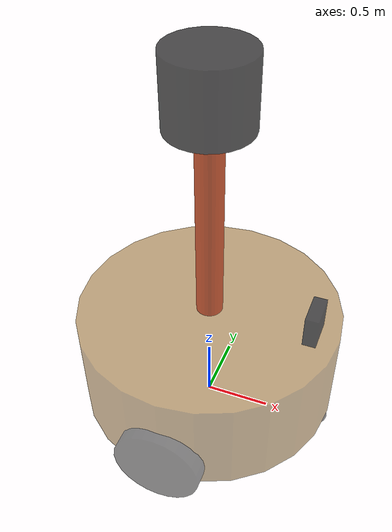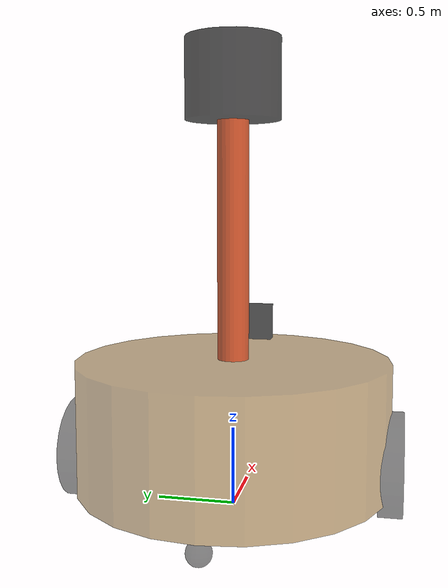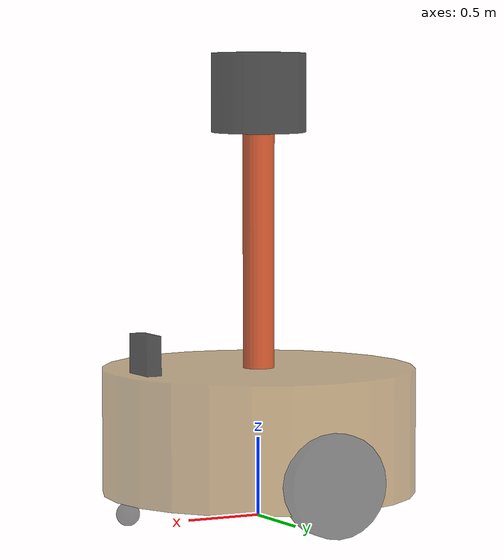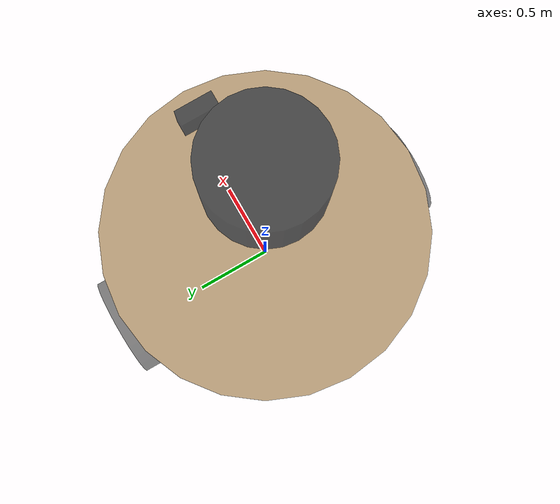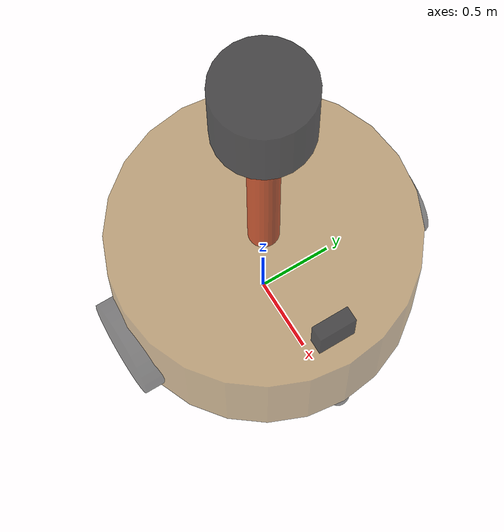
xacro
<robot name="my_base" xmlns:xacro="http://www.ros.org/wiki/xacro">

    <!-- 包含底盘，摄像头与雷达的xacro文件 -->
    <xacro:include filename="demo05_car_base.xacro"/>
    <xacro:include filename="demo06_car_camera.urdf.xacro"/>
    <xacro:include filename="demo07_car_laser.urdf.xacro"/>

</robot>

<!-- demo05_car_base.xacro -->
<robot name="my_base" xmlns:xacro="http://www.ros.org/wiki/xacro">

    <xacro:property name="footprint_radius" value="0.001" />
    <!-- 底盘属性 -->
    <xacro:property name="base_link_radius" value="1" /> <!-- base_link 半径 -->
    <xacro:property name="base_link_length" value="0.8" /> <!-- base_link 长 -->
    <xacro:property name="lidi" value="0.15" /> <!-- 离地间距 -->

    <!-- 1.base_footprint -->
    <link name="base_footprint">

        <visual>
        <geometry>
            <sphere radius="${footprint_radius}" />
        </geometry>
        </visual>
    </link>

    <!-- 2.base_link -->
    <link name="base_link">
        <visual>
        <geometry>
            <cylinder radius="${base_link_radius}" length="${base_link_length}" />
        </geometry>
        <origin xyz="0 0 0" rpy="0 0 0" />
        <material name="yellow">
            <color rgba="0.5 0.3 0.0 0.5" />
        </material>
        </visual>
    </link>

    <joint name="base_link2base_footprint" type="fixed">
        <parent link="base_footprint" />
        <child link="base_link" />
        <origin xyz="0 0 ${lidi + base_link_length / 2 }" />
    </joint>

    <!-- 3.添加驱动轮 -->
    <!--
        形状：圆柱
        半径：0.035m
        长度：0.015m

     -->

    <!-- 属性 -->
    <xacro:property name="wheel_radius" value="0.325" />
    <xacro:property name="wheel_length" value="0.15" />
    <xacro:property name="PI" value="3.1415926" />
    <!-- 注意：结果是负数 -->
    <xacro:property name="wheel_joint_z" value="${-1*(base_link_length/2+lidi - wheel_radius)}" />
    <!--
        wheel_name: left or right
        flag: 1 or -1

     -->

    <!-- 宏的定义 不调用不生效 -->
    <xacro:macro name="wheel_func" params="wheel_name flag">
        <!-- 3.1.link -->
        <link name="${wheel_name}_wheel">
            <visual>
            <geometry>
                <cylinder radius="${wheel_radius}" length="${wheel_length}" />
            </geometry>
            <origin xyz="0.0 0.0 0.0" rpy="${PI / 2} 0.0 0.0" />
            <material name="black">
                <color rgba="0 0 0 0.5" />
            </material>
            </visual>
        </link>

            <!-- 3.2.joint -->
        <joint name="${wheel_name}2link" type="continuous">
            <parent link="base_link" />
            <child link="${wheel_name}_wheel" />
            <!--
                x 无偏移
                y 车体半径
                z z=-(车体高度/2 + 离地间距 - 车轮半径)

            -->
            <origin xyz="0 ${flag * base_link_radius} ${wheel_joint_z }" />
            <axis xyz="0 1 0" />
        </joint>

    </xacro:macro>

    <!-- 宏的调用 -->
    <xacro:wheel_func wheel_name="left" flag="1" />
    <xacro:wheel_func wheel_name="right" flag="-1" />

    <!-- 4.添加支撑轮 -->
    <!--
        形状:球
        半径：0.0075m
     -->
    <!-- 支撑轮属性 -->
    <xacro:property name="support_wheel_radius" value="0.075" /> <!-- 支撑轮半径 -->
    <!-- z的偏移量 = 车体高度/2 + 离地间距 - 支持轮半径 -->
    <xacro:property name="support_joint_z" value="${-(base_link_length/2+lidi-support_wheel_radius)}" />

    <!-- 支撑轮宏 -->
    <xacro:macro name="add_support_wheel" params="support_name flag" >
        <link name="${support_name}_wheel">
            <visual>
                <geometry>
                    <sphere radius="${support_wheel_radius}" />
                </geometry>
                <origin xyz="0 0 0" rpy="0 0 0" />
                <material name="black">
                    <color rgba="0 0 0 0.5" />
                </material>
            </visual>
        </link>

        <joint name="${support_name}_wheel2link" type="continuous">
            <parent link="base_link" />
            <child link="${support_name}_wheel" />
            <origin xyz="${flag * (base_link_radius - support_wheel_radius)} 0 ${support_joint_z}" />
            <axis xyz="1 1 1" />
        </joint>
    </xacro:macro>

    <xacro:add_support_wheel support_name="front" flag="1" />
    <xacro:add_support_wheel support_name="back" flag="-1" />

</robot>

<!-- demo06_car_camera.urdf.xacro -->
<!-- 摄像头相关的 xacro 文件 -->
<robot name="my_camera" xmlns:xacro="http://wiki.ros.org/xacro">
    <!-- 摄像头属性 -->
    <xacro:property name="camera_length" value="0.1" /> <!-- 摄像头长度(x) -->
    <xacro:property name="camera_width" value="0.25" /> <!-- 摄像头宽度(y) -->
    <xacro:property name="camera_height" value="0.25" /> <!-- 摄像头高度(z) -->
    <xacro:property name="camera_x" value="0.8" /> <!-- 摄像头安装的x坐标 -->
    <xacro:property name="camera_y" value="0.0" /> <!-- 摄像头安装的y坐标 -->
    <xacro:property name="camera_z" value="${base_link_length / 2 + camera_height / 2}" /> <!-- 摄像头安装的z坐标:底盘高度 / 2 + 摄像头高度 / 2  -->

    <!-- 摄像头关节以及link -->
    <link name="camera">
        <visual>
            <geometry>
                <box size="${camera_length} ${camera_width} ${camera_height}" />
            </geometry>
            <origin xyz="0.0 0.0 0.0" rpy="0.0 0.0 0.0" />
            <material name="black">
                <color rgba="0.0 0.0 0.0 0.7" />
            </material>
        </visual>
    </link>

    <joint name="camera2base" type="fixed">
        <parent link="base_link" />
        <child link="camera" />
        <origin xyz="${camera_x} ${camera_y} ${camera_z}" />
    </joint>
</robot>

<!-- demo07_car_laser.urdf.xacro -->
<!--
    小车底盘添加雷达
-->
<robot name="my_laser" xmlns:xacro="http://wiki.ros.org/xacro">

    <!-- 雷达支架 -->
    <xacro:property name="support_length" value="1.5" /> <!-- 支架长度 -->
    <xacro:property name="support_radius" value="0.1" /> <!-- 支架半径 -->
    <xacro:property name="support_x" value="0.0" /> <!-- 支架安装的x坐标 -->
    <xacro:property name="support_y" value="0.0" /> <!-- 支架安装的y坐标 -->
    <xacro:property name="support_z" value="${base_link_length / 2 + support_length / 2}" /> <!-- 支架安装的z坐标:底盘高度 / 2 + 支架高度 / 2  -->

    <link name="support">
        <visual>
            <geometry>
                <cylinder radius="${support_radius}" length="${support_length}" />
            </geometry>
            <origin xyz="0.0 0.0 0.0" rpy="0.0 0.0 0.0" />
            <material name="red">
                <color rgba="0.8 0.2 0.0 0.8" />
            </material>
        </visual>
    </link>

    <joint name="support2base" type="fixed">
        <parent link="base_link" />
        <child link="support" />
        <origin xyz="${support_x} ${support_y} ${support_z}" />
    </joint>

    <!-- 雷达属性 -->
    <xacro:property name="laser_length" value="0.5" /> <!-- 雷达长度 -->
    <xacro:property name="laser_radius" value="0.3" /> <!-- 雷达半径 -->
    <xacro:property name="laser_x" value="0.0" /> <!-- 雷达安装的x坐标 -->
    <xacro:property name="laser_y" value="0.0" /> <!-- 雷达安装的y坐标 -->
    <xacro:property name="laser_z" value="${support_length / 2 + laser_length / 2}" /> <!-- 雷达安装的z坐标:支架高度 / 2 + 雷达高度 / 2  -->

    <!-- 雷达关节以及link -->
    <link name="laser">
        <visual>
            <geometry>
                <cylinder radius="${laser_radius}" length="${laser_length}" />
            </geometry>
            <origin xyz="0.0 0.0 0.0" rpy="0.0 0.0 0.0" />
            <material name="black">
                <color rgba="0.0 0.0 0.0 0.7" />
            </material>
        </visual>
    </link>

    <joint name="laser2support" type="fixed">
        <parent link="support" />
        <child link="laser" />
        <origin xyz="${laser_x} ${laser_y} ${laser_z}" />
    </joint>
</robot>
